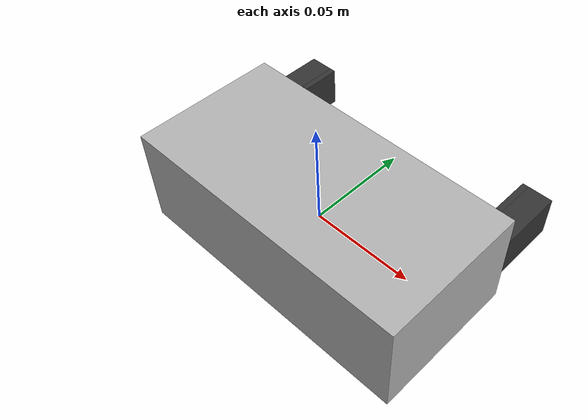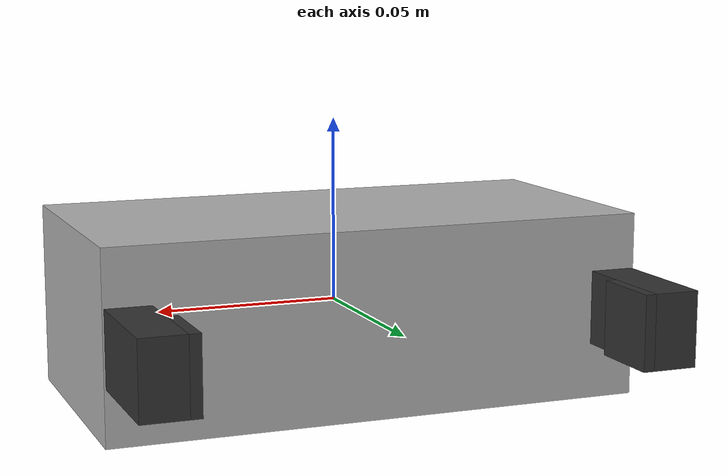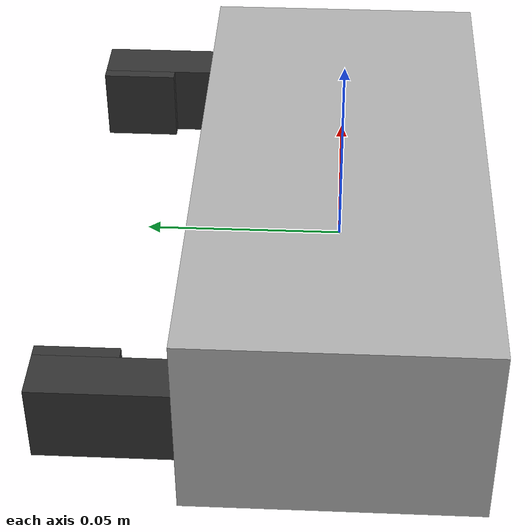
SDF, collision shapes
<?xml version="1.0"?>
<!-- This sdf file is based on schunk_wsg_50.sdf -->
<sdf version="1.7">
  <model name="Schunk_Gripper">
    <link name="body">
      <inertial>
        <mass>0.988882</mass>
        <inertia>
          <ixx>0.162992</ixx>
          <ixy>0</ixy>
          <ixz>0</ixz>
          <iyy>0.162992</iyy>
          <iyz>0</iyz>
          <izz>0.164814</izz>
        </inertia>
      </inertial>
      <kinematic>0</kinematic>
      <visual name="visual">
        <geometry>
          <mesh>
            <scale>1 1 1</scale>
            <uri>package://drake_models/wsg_50_description/meshes/wsg_body.obj</uri>
          </mesh>
        </geometry>
        <material>
          <diffuse>0.7 0.7 0.7 1</diffuse>
        </material>
      </visual>
      <collision name="collision">
        <geometry>
          <box>
            <size>0.146 0.0725 0.05</size>
          </box>
        </geometry>
        <drake:proximity_properties>
          <drake:compliant_hydroelastic/>
          <drake:hydroelastic_modulus>1.0e4</drake:hydroelastic_modulus>
        </drake:proximity_properties>
      </collision>
    </link>
    <frame name="body_frame">
      <pose relative_to="body"/>
    </frame>
    <link name="left_finger">
      <pose>-0.0665 0.028 0 0 3.141592 0</pose>
      <inertial>
        <mass>0.05</mass>
        <inertia>
          <ixx>0.16</ixx>
          <ixy>0</ixy>
          <ixz>0</ixz>
          <iyy>0.16</iyy>
          <iyz>0</iyz>
          <izz>0.16</izz>
        </inertia>
      </inertial>
      <kinematic>0</kinematic>
      <visual name="visual">
        <geometry>
          <mesh>
            <scale>1 1 1</scale>
            <uri>package://drake_models/wsg_50_description/meshes/finger_with_tip.obj</uri>
          </mesh>
        </geometry>
        <material>
          <diffuse>0.2 0.2 0.2 1</diffuse>
        </material>
      </visual>
      <collision name="left_tip">
        <pose> -0.0075 0.031 0 0 0 0 </pose>
        <geometry>
          <box>
            <size>0.003 0.02 0.02</size>
          </box>
        </geometry>
        <drake:proximity_properties>
          <drake:compliant_hydroelastic/>
          <drake:hydroelastic_modulus>1.0e4</drake:hydroelastic_modulus>
          <drake:mu_static>100.0</drake:mu_static>
          <drake:mu_dynamic>100.0</drake:mu_dynamic>
        </drake:proximity_properties>
      </collision>
      <collision name="collision">
        <geometry>
          <box>
            <size>0.012 0.082 0.02</size>
          </box>
        </geometry>
        <drake:proximity_properties>
          <drake:compliant_hydroelastic/>
          <drake:hydroelastic_modulus>1.0e4</drake:hydroelastic_modulus>
          <drake:mu_static>100.0</drake:mu_static>
          <drake:mu_dynamic>100.0</drake:mu_dynamic>
        </drake:proximity_properties>
      </collision>
    </link>
    <link name="right_finger">
      <pose>0.0665 0.028 0 0 0 0</pose>
      <inertial>
        <mass>0.05</mass>
        <inertia>
          <ixx>0.16</ixx>
          <ixy>0</ixy>
          <ixz>0</ixz>
          <iyy>0.16</iyy>
          <iyz>0</iyz>
          <izz>0.16</izz>
        </inertia>
      </inertial>
      <kinematic>0</kinematic>
      <visual name="visual">
        <geometry>
          <mesh>
            <scale>1 1 1</scale>
            <uri>package://drake_models/wsg_50_description/meshes/finger_with_tip.obj</uri>
          </mesh>
        </geometry>
        <material>
          <diffuse>0.2 0.2 0.2 1</diffuse>
        </material>
      </visual>
      <collision name="left_tip">
        <pose> -0.0075 0.031 0 0 0 0 </pose>
        <geometry>
          <box>
            <size>0.003 0.02 0.02</size>
          </box>
        </geometry>
        <drake:proximity_properties>
          <drake:compliant_hydroelastic/>
          <drake:hydroelastic_modulus>1.0e4</drake:hydroelastic_modulus>
          <drake:mu_static>100.0</drake:mu_static>
          <drake:mu_dynamic>100.0</drake:mu_dynamic>
        </drake:proximity_properties>
      </collision>
      <collision name="collision">
        <geometry>
          <box>
            <size>0.012 0.082 0.02</size>
          </box>
        </geometry>
        <drake:proximity_properties>
          <drake:compliant_hydroelastic/>
          <drake:hydroelastic_modulus>1.0e4</drake:hydroelastic_modulus>
          <drake:mu_static>100.0</drake:mu_static>
          <drake:mu_dynamic>100.0</drake:mu_dynamic>
        </drake:proximity_properties>
      </collision>
    </link>
    <joint name="left_finger_joint" type="fixed">
      <parent>body</parent>
      <child>left_finger</child>
    </joint>
    <joint name="right_finger_joint" type="fixed">
      <parent>body</parent>
      <child>right_finger</child>
    </joint>
    <static>0</static>
  </model>
</sdf>
